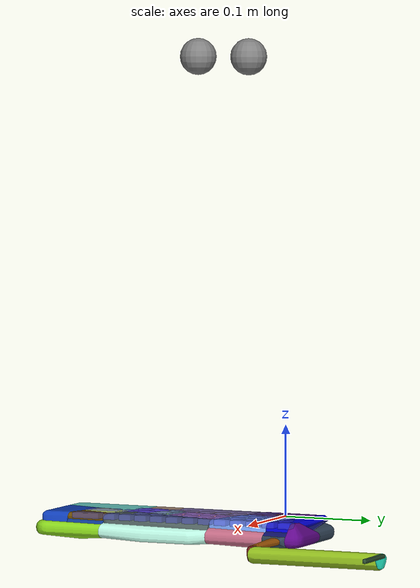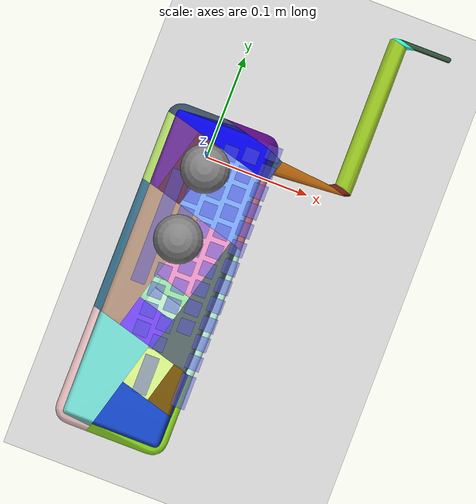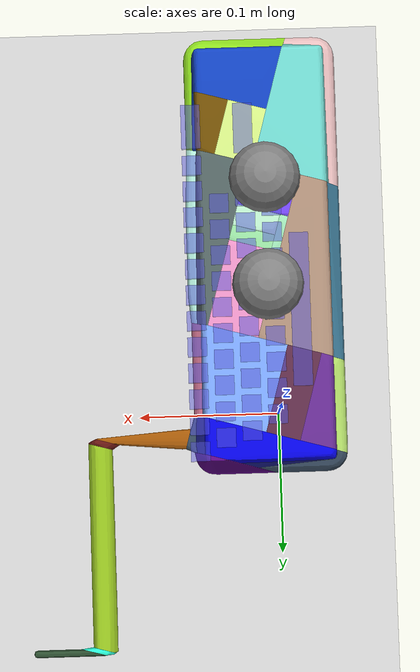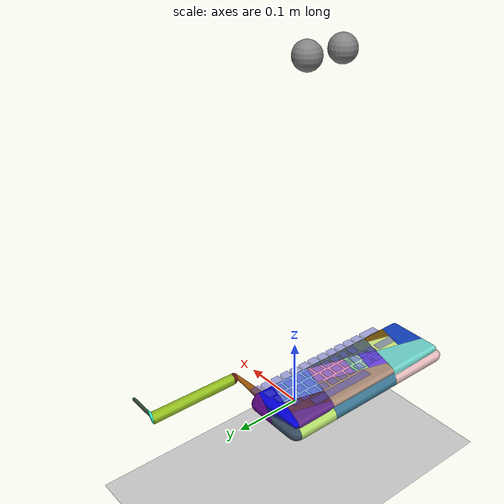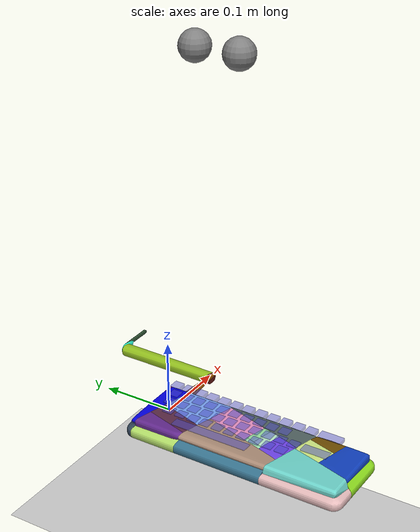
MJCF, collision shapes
<mujoco model="scene">
    <option timestep="0.001" integrator="implicitfast"/>

    <include file="/home/ccs/repositories/robot_typing/assets/keyboards/keyboard_1/keyboard_1_preview.xml"/>
    <worldbody>
        <!-- 添加灯光 -->
        <light name="main_light" pos="0 0 5" dir="0 0 -1" diffuse="1 1 1" specular="0.3 0.3 0.3"/>

        <!-- 添加地面 -->
        <geom name="ground" type="plane" pos="0 0 -0.2" size="5 5 0.1" rgba="0.8 0.8 0.8 1"/>

        <body name="sphere1" pos="0.0190 -0.0960 0.5">
            <joint name="base_static_joint1" type="free" limited="false" actuatorfrclimited="false"/>
            <geom name="sphere1" type="sphere" size="0.02" rgba="0.5 0.5 0.5 0.5" mass="1" />
        </body>

        <body name="sphere2" pos="0.0190 -0.0360 0.5">
            <joint name="base_static_joint2" type="free" limited="false" actuatorfrclimited="false"/>
            <geom name="sphere2" type="sphere" size="0.02" rgba="0.5 0.5 0.5 0.5" mass="1" />
        </body>
    </worldbody>
</mujoco>

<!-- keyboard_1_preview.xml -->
<mujoco model="keyboard_1">
  <default>
    <default class="visual">
      <geom group="2" type="mesh" contype="0" conaffinity="0"/>
    </default>
    <default class="collision">
      <geom group="3" type="mesh"/>
    </default>
  </default>
  <asset>
    <material name="BLACK" specular="0.5" shininess="0.25" rgba="0.000000 0.000000 0.000000 1.000000"/>
    <material name="DARKORANGE2" specular="0.5" shininess="0.25" rgba="0.723055 0.201556 0.004777 1.000000"/>
    <material name="GRAY2" specular="0.5" shininess="0.25" rgba="0.001518 0.001518 0.001518 1.000000"/>
    <material name="GRAY38" specular="0.5" shininess="0.25" rgba="0.102242 0.122139 0.132868 1.000000"/>
    <material name="GRAY50" specular="0.5" shininess="0.25" rgba="0.215861 0.215861 0.215861 1.000000"/>
    <material name="GRAY61" specular="0.5" shininess="0.25" rgba="0.327778 0.327778 0.327778 1.000000"/>
    <material name="GRAY94" specular="0.5" shininess="0.25" rgba="0.838799 0.879622 0.863157 1.000000"/>
    <material name="MATRAGRAY" specular="0.5" shininess="0.25" rgba="0.318547 0.318547 0.318547 1.000000"/>
    <material name="WHITESMOKE" specular="0.5" shininess="0.25" rgba="0.904661 0.904661 0.904661 1.000000"/>
    <material name="YELLOW" specular="0.5" shininess="0.25" rgba="1.000000 1.000000 0.000000 1.000000"/>
    <mesh file="keyboard_1_0.obj"/>
    <mesh file="keyboard_1_1.obj"/>
    <mesh file="keyboard_1_2.obj"/>
    <mesh file="keyboard_1_3.obj"/>
    <mesh file="keyboard_1_4.obj"/>
    <mesh file="keyboard_1_5.obj"/>
    <mesh file="keyboard_1_6.obj"/>
    <mesh file="keyboard_1_7.obj"/>
    <mesh file="keyboard_1_8.obj"/>
    <mesh file="keyboard_1_9.obj"/>
    <mesh file="keyboard_1_collision_0.obj"/>
    <mesh file="keyboard_1_collision_1.obj"/>
    <mesh file="keyboard_1_collision_2.obj"/>
    <mesh file="keyboard_1_collision_3.obj"/>
    <mesh file="keyboard_1_collision_4.obj"/>
    <mesh file="keyboard_1_collision_5.obj"/>
    <mesh file="keyboard_1_collision_6.obj"/>
    <mesh file="keyboard_1_collision_7.obj"/>
    <mesh file="keyboard_1_collision_8.obj"/>
    <mesh file="keyboard_1_collision_9.obj"/>
    <mesh file="keyboard_1_collision_10.obj"/>
    <mesh file="keyboard_1_collision_11.obj"/>
    <mesh file="keyboard_1_collision_12.obj"/>
    <mesh file="keyboard_1_collision_13.obj"/>
    <mesh file="keyboard_1_collision_14.obj"/>
    <mesh file="keyboard_1_collision_15.obj"/>
    <mesh file="keyboard_1_collision_16.obj"/>
    <mesh file="keyboard_1_collision_17.obj"/>
    <mesh file="keyboard_1_collision_18.obj"/>
    <mesh file="keyboard_1_collision_19.obj"/>
    <mesh file="keyboard_1_collision_20.obj"/>
    <mesh file="keyboard_1_collision_21.obj"/>
    <mesh file="keyboard_1_collision_22.obj"/>
    <mesh file="keyboard_1_collision_23.obj"/>
    <mesh file="keyboard_1_collision_24.obj"/>
    <mesh file="keyboard_1_collision_25.obj"/>
    <mesh file="keyboard_1_collision_26.obj"/>
    <mesh file="keyboard_1_collision_27.obj"/>
    <mesh file="keyboard_1_collision_28.obj"/>
    <mesh file="keyboard_1_collision_29.obj"/>
    <mesh file="keyboard_1_collision_30.obj"/>
  </asset>
  <worldbody>
    <camera name="overhead_view" mode="fixed" pos="0 -0.12 0.3" quat="0.707 0 0 -0.707" fovy="60"/>
    <body name="keyboard_1">
      <geom mesh="keyboard_1_0" material="GRAY50" class="visual"/>
      <geom mesh="keyboard_1_1" material="GRAY2" class="visual"/>
      <geom mesh="keyboard_1_2" material="MATRAGRAY" class="visual"/>
      <geom mesh="keyboard_1_3" material="GRAY61" class="visual"/>
      <geom mesh="keyboard_1_4" material="DARKORANGE2" class="visual"/>
      <geom mesh="keyboard_1_5" material="GRAY94" class="visual"/>
      <geom mesh="keyboard_1_6" material="GRAY38" class="visual"/>
      <geom mesh="keyboard_1_7" material="YELLOW" class="visual"/>
      <geom mesh="keyboard_1_8" material="WHITESMOKE" class="visual"/>
      <geom mesh="keyboard_1_9" material="BLACK" class="visual"/>
      <geom mesh="keyboard_1_collision_0" rgba="0.37025280234571756 0.02541184622643322 0.5371683510211692 1" class="collision"/>
      <geom mesh="keyboard_1_collision_1" rgba="0.15359992214513096 0.9512203453893971 0.8092398641776433 1" class="collision"/>
      <geom mesh="keyboard_1_collision_2" rgba="0.1708922421505047 0.30104228942326283 0.18536506299126387 1" class="collision"/>
      <geom mesh="keyboard_1_collision_3" rgba="0.4096796159999905 0.08915837429298301 0.0742749781525942 1" class="collision"/>
      <geom mesh="keyboard_1_collision_4" rgba="0.63381945224242 0.338828167373711 0.02697345233460746 1" class="collision"/>
      <geom mesh="keyboard_1_collision_5" rgba="0.35528881901693476 0.16575012438670633 0.2734718148015105 1" class="collision"/>
      <geom mesh="keyboard_1_collision_6" rgba="0.876801131554526 0.7168720148763204 0.7174623738195887 1" class="collision"/>
      <geom mesh="keyboard_1_collision_7" rgba="0.05623586971925498 0.06840095557219117 0.41191760865487126 1" class="collision"/>
      <geom mesh="keyboard_1_collision_8" rgba="0.21799614204201956 0.4470577124646403 0.5537768150411897 1" class="collision"/>
      <geom mesh="keyboard_1_collision_9" rgba="0.010845586237483107 0.0018515170579075368 0.8784495422973788 1" class="collision"/>
      <geom mesh="keyboard_1_collision_10" rgba="0.666269762536608 0.5452294846804815 0.46026742964406187 1" class="collision"/>
      <geom mesh="keyboard_1_collision_11" rgba="0.5468240028116772 0.8512557041889841 0.11771991256623382 1" class="collision"/>
      <geom mesh="keyboard_1_collision_12" rgba="0.20544768968643967 0.2788943076711119 0.358279002656015 1" class="collision"/>
      <geom mesh="keyboard_1_collision_13" rgba="0.43895072828497794 0.26415193603665577 0.9286525503335852 1" class="collision"/>
      <geom mesh="keyboard_1_collision_14" rgba="0.469727866933052 0.6342088219152237 0.9500015288652965 1" class="collision"/>
      <geom mesh="keyboard_1_collision_15" rgba="0.7458747528187891 0.982305853800671 0.9034776078085492 1" class="collision"/>
      <geom mesh="keyboard_1_collision_16" rgba="0.38500272820605297 0.16004989936872038 0.5539142222868018 1" class="collision"/>
      <geom mesh="keyboard_1_collision_17" rgba="0.6862512007226008 0.8480870522993911 0.40013072616758605 1" class="collision"/>
      <geom mesh="keyboard_1_collision_18" rgba="0.31649700415475823 0.3835189383584414 0.3792351589158155 1" class="collision"/>
      <geom mesh="keyboard_1_collision_19" rgba="0.774874210677968 0.42587993021680814 0.5291726091680287 1" class="collision"/>
      <geom mesh="keyboard_1_collision_20" rgba="0.4253050605383226 0.8243464822068748 0.7884415164484475 1" class="collision"/>
      <geom mesh="keyboard_1_collision_21" rgba="0.06412029996287405 0.2524466104742549 0.743724660848963 1" class="collision"/>
      <geom mesh="keyboard_1_collision_22" rgba="0.7199197296213864 0.9075662749771233 0.7792430197466498 1" class="collision"/>
      <geom mesh="keyboard_1_collision_23" rgba="0.0521411652817142 0.22475282128082885 0.5778420882677087 1" class="collision"/>
      <geom mesh="keyboard_1_collision_24" rgba="0.8162209134772382 0.9195822243131945 0.5126038700519188 1" class="collision"/>
      <geom mesh="keyboard_1_collision_25" rgba="0.8962166132227063 0.5626388510910407 0.7563227712694878 1" class="collision"/>
      <geom mesh="keyboard_1_collision_26" rgba="0.5699735960165665 0.7397132500423549 0.11825098416909474 1" class="collision"/>
      <geom mesh="keyboard_1_collision_27" rgba="0.4347555264671078 0.3033872421563838 0.010820969341827191 1" class="collision"/>
      <geom mesh="keyboard_1_collision_28" rgba="0.6064563227095185 0.8722408020381571 0.6920670172442485 1" class="collision"/>
      <geom mesh="keyboard_1_collision_29" rgba="0.13251666494064618 0.6158750905776097 0.14443360712815145 1" class="collision"/>
      <geom mesh="keyboard_1_collision_30" rgba="0.5861819948915 0.8624429407180787 0.6221280746599763 1" class="collision"/>
      <site name="sensor_site_1" type="box" pos="0.0570 0.0255 -0.0030" size="0.0070 0.0070 0.003" rgba="0.3 0.3 0.8 0.5"/>
      <site name="sensor_site_2" type="box" pos="0.0570 0.0065 -0.0030" size="0.0070 0.0070 0.003" rgba="0.3 0.3 0.8 0.5"/>
      <site name="sensor_site_3" type="box" pos="0.0570 -0.0125 -0.0030" size="0.0070 0.0070 0.003" rgba="0.3 0.3 0.8 0.5"/>
      <site name="sensor_site_4" type="box" pos="0.0570 -0.0315 -0.0030" size="0.0070 0.0070 0.003" rgba="0.3 0.3 0.8 0.5"/>
      <site name="sensor_site_5" type="box" pos="0.0570 -0.0505 -0.0030" size="0.0070 0.0070 0.003" rgba="0.3 0.3 0.8 0.5"/>
      <site name="sensor_site_6" type="box" pos="0.0570 -0.0695 -0.0030" size="0.0070 0.0070 0.003" rgba="0.3 0.3 0.8 0.5"/>
      <site name="sensor_site_7" type="box" pos="0.0570 -0.0885 -0.0030" size="0.0070 0.0070 0.003" rgba="0.3 0.3 0.8 0.5"/>
      <site name="sensor_site_8" type="box" pos="0.0570 -0.1075 -0.0030" size="0.0070 0.0070 0.003" rgba="0.3 0.3 0.8 0.5"/>
      <site name="sensor_site_9" type="box" pos="0.0570 -0.1265 -0.0030" size="0.0070 0.0070 0.003" rgba="0.3 0.3 0.8 0.5"/>
      <site name="sensor_site_0" type="box" pos="0.0570 -0.1455 -0.0030" size="0.0070 0.0070 0.003" rgba="0.3 0.3 0.8 0.5"/>
      <site name="sensor_site_-" type="box" pos="0.0570 -0.1645 -0.0030" size="0.0070 0.0070 0.003" rgba="0.3 0.3 0.8 0.5"/>
      <site name="sensor_site_=" type="box" pos="0.0570 -0.1835 -0.0030" size="0.0070 0.0070 0.003" rgba="0.3 0.3 0.8 0.5"/>
      <site name="sensor_site_Q" type="box" pos="0.0380 0.0160 -0.0030" size="0.0070 0.0070 0.003" rgba="0.3 0.3 0.8 0.5"/>
      <site name="sensor_site_W" type="box" pos="0.0380 -0.0030 -0.0030" size="0.0070 0.0070 0.003" rgba="0.3 0.3 0.8 0.5"/>
      <site name="sensor_site_E" type="box" pos="0.0380 -0.0220 -0.0030" size="0.0070 0.0070 0.003" rgba="0.3 0.3 0.8 0.5"/>
      <site name="sensor_site_R" type="box" pos="0.0380 -0.0410 -0.0030" size="0.0070 0.0070 0.003" rgba="0.3 0.3 0.8 0.5"/>
      <site name="sensor_site_T" type="box" pos="0.0380 -0.0600 -0.0030" size="0.0070 0.0070 0.003" rgba="0.3 0.3 0.8 0.5"/>
      <site name="sensor_site_Y" type="box" pos="0.0380 -0.0790 -0.0030" size="0.0070 0.0070 0.003" rgba="0.3 0.3 0.8 0.5"/>
      <site name="sensor_site_U" type="box" pos="0.0380 -0.0980 -0.0030" size="0.0070 0.0070 0.003" rgba="0.3 0.3 0.8 0.5"/>
      <site name="sensor_site_I" type="box" pos="0.0380 -0.1170 -0.0030" size="0.0070 0.0070 0.003" rgba="0.3 0.3 0.8 0.5"/>
      <site name="sensor_site_O" type="box" pos="0.0380 -0.1360 -0.0030" size="0.0070 0.0070 0.003" rgba="0.3 0.3 0.8 0.5"/>
      <site name="sensor_site_P" type="box" pos="0.0380 -0.1550 -0.0030" size="0.0070 0.0070 0.003" rgba="0.3 0.3 0.8 0.5"/>
      <site name="sensor_site_A" type="box" pos="0.0190 0.0115 -0.0030" size="0.0070 0.0070 0.003" rgba="0.3 0.3 0.8 0.5"/>
      <site name="sensor_site_S" type="box" pos="0.0190 -0.0075 -0.0030" size="0.0070 0.0070 0.003" rgba="0.3 0.3 0.8 0.5"/>
      <site name="sensor_site_D" type="box" pos="0.0190 -0.0265 -0.0030" size="0.0070 0.0070 0.003" rgba="0.3 0.3 0.8 0.5"/>
      <site name="sensor_site_F" type="box" pos="0.0190 -0.0455 -0.0030" size="0.0070 0.0070 0.003" rgba="0.3 0.3 0.8 0.5"/>
      <site name="sensor_site_G" type="box" pos="0.0190 -0.0645 -0.0030" size="0.0070 0.0070 0.003" rgba="0.3 0.3 0.8 0.5"/>
      <site name="sensor_site_H" type="box" pos="0.0190 -0.0835 -0.0030" size="0.0070 0.0070 0.003" rgba="0.3 0.3 0.8 0.5"/>
      <site name="sensor_site_J" type="box" pos="0.0190 -0.1025 -0.0030" size="0.0070 0.0070 0.003" rgba="0.3 0.3 0.8 0.5"/>
      <site name="sensor_site_K" type="box" pos="0.0190 -0.1215 -0.0030" size="0.0070 0.0070 0.003" rgba="0.3 0.3 0.8 0.5"/>
      <site name="sensor_site_L" type="box" pos="0.0190 -0.1405 -0.0030" size="0.0070 0.0070 0.003" rgba="0.3 0.3 0.8 0.5"/>
      <site name="sensor_site_;" type="box" pos="0.0190 -0.1595 -0.0030" size="0.0070 0.0070 0.003" rgba="0.3 0.3 0.8 0.5"/>
      <site name="sensor_site_'" type="box" pos="0.0190 -0.1785 -0.0030" size="0.0070 0.0070 0.003" rgba="0.3 0.3 0.8 0.5"/>
      <site name="sensor_site_Z" type="box" pos="0.0000 0.0000 -0.0030" size="0.0070 0.0070 0.003" rgba="0.3 0.3 0.8 0.5"/>
      <site name="sensor_site_X" type="box" pos="0.0000 -0.0190 -0.0030" size="0.0070 0.0070 0.003" rgba="0.3 0.3 0.8 0.5"/>
      <site name="sensor_site_C" type="box" pos="0.0000 -0.0380 -0.0030" size="0.0070 0.0070 0.003" rgba="0.3 0.3 0.8 0.5"/>
      <site name="sensor_site_V" type="box" pos="0.0000 -0.0570 -0.0030" size="0.0070 0.0070 0.003" rgba="0.3 0.3 0.8 0.5"/>
      <site name="sensor_site_B" type="box" pos="0.0000 -0.0760 -0.0030" size="0.0070 0.0070 0.003" rgba="0.3 0.3 0.8 0.5"/>
      <site name="sensor_site_N" type="box" pos="0.0000 -0.0950 -0.0030" size="0.0070 0.0070 0.003" rgba="0.3 0.3 0.8 0.5"/>
      <site name="sensor_site_M" type="box" pos="0.0000 -0.1140 -0.0030" size="0.0070 0.0070 0.003" rgba="0.3 0.3 0.8 0.5"/>
      <site name="sensor_site_," type="box" pos="0.0000 -0.1330 -0.0030" size="0.0070 0.0070 0.003" rgba="0.3 0.3 0.8 0.5"/>
      <site name="sensor_site_." type="box" pos="0.0000 -0.1520 -0.0030" size="0.0070 0.0070 0.003" rgba="0.3 0.3 0.8 0.5"/>
      <site name="sensor_site_/" type="box" pos="0.0000 -0.1710 -0.0030" size="0.0070 0.0070 0.003" rgba="0.3 0.3 0.8 0.5"/>
      <site name="sensor_site_space" type="box" pos="-0.0190 -0.0760 -0.0030" size="0.0070 0.0560 0.003" rgba="0.3 0.3 0.8 0.5"/>
      <site name="sensor_site_backspace" type="box" pos="0.0570 -0.2120 -0.0030" size="0.0070 0.0160 0.003" rgba="0.3 0.3 0.8 0.5"/>
      <site name="sensor_site_enter1" type="box" pos="0.0190 -0.2100 -0.0030" size="0.0070 0.0185 0.003" rgba="0.3 0.3 0.8 0.5"/>
    </body>
  </worldbody>
  <sensor>
    <touch name="touch_1" site="sensor_site_1" cutoff="1000"/>
    <touch name="touch_2" site="sensor_site_2" cutoff="1000"/>
    <touch name="touch_3" site="sensor_site_3" cutoff="1000"/>
    <touch name="touch_4" site="sensor_site_4" cutoff="1000"/>
    <touch name="touch_5" site="sensor_site_5" cutoff="1000"/>
    <touch name="touch_6" site="sensor_site_6" cutoff="1000"/>
    <touch name="touch_7" site="sensor_site_7" cutoff="1000"/>
    <touch name="touch_8" site="sensor_site_8" cutoff="1000"/>
    <touch name="touch_9" site="sensor_site_9" cutoff="1000"/>
    <touch name="touch_0" site="sensor_site_0" cutoff="1000"/>
    <touch name="touch_-" site="sensor_site_-" cutoff="1000"/>
    <touch name="touch_=" site="sensor_site_=" cutoff="1000"/>
    <touch name="touch_Q" site="sensor_site_Q" cutoff="1000"/>
    <touch name="touch_W" site="sensor_site_W" cutoff="1000"/>
    <touch name="touch_E" site="sensor_site_E" cutoff="1000"/>
    <touch name="touch_R" site="sensor_site_R" cutoff="1000"/>
    <touch name="touch_T" site="sensor_site_T" cutoff="1000"/>
    <touch name="touch_Y" site="sensor_site_Y" cutoff="1000"/>
    <touch name="touch_U" site="sensor_site_U" cutoff="1000"/>
    <touch name="touch_I" site="sensor_site_I" cutoff="1000"/>
    <touch name="touch_O" site="sensor_site_O" cutoff="1000"/>
    <touch name="touch_P" site="sensor_site_P" cutoff="1000"/>
    <touch name="touch_A" site="sensor_site_A" cutoff="1000"/>
    <touch name="touch_S" site="sensor_site_S" cutoff="1000"/>
    <touch name="touch_D" site="sensor_site_D" cutoff="1000"/>
    <touch name="touch_F" site="sensor_site_F" cutoff="1000"/>
    <touch name="touch_G" site="sensor_site_G" cutoff="1000"/>
    <touch name="touch_H" site="sensor_site_H" cutoff="1000"/>
    <touch name="touch_J" site="sensor_site_J" cutoff="1000"/>
    <touch name="touch_K" site="sensor_site_K" cutoff="1000"/>
    <touch name="touch_L" site="sensor_site_L" cutoff="1000"/>
    <touch name="touch_;" site="sensor_site_;" cutoff="1000"/>
    <touch name="touch_'" site="sensor_site_'" cutoff="1000"/>
    <touch name="touch_Z" site="sensor_site_Z" cutoff="1000"/>
    <touch name="touch_X" site="sensor_site_X" cutoff="1000"/>
    <touch name="touch_C" site="sensor_site_C" cutoff="1000"/>
    <touch name="touch_V" site="sensor_site_V" cutoff="1000"/>
    <touch name="touch_B" site="sensor_site_B" cutoff="1000"/>
    <touch name="touch_N" site="sensor_site_N" cutoff="1000"/>
    <touch name="touch_M" site="sensor_site_M" cutoff="1000"/>
    <touch name="touch_," site="sensor_site_," cutoff="1000"/>
    <touch name="touch_." site="sensor_site_." cutoff="1000"/>
    <touch name="touch_/" site="sensor_site_/" cutoff="1000"/>
    <touch name="touch_space" site="sensor_site_space" cutoff="1000"/>
    <touch name="touch_backspace" site="sensor_site_backspace" cutoff="1000"/>
    <touch name="touch_enter1" site="sensor_site_enter1" cutoff="1000"/>
  </sensor>
</mujoco>
